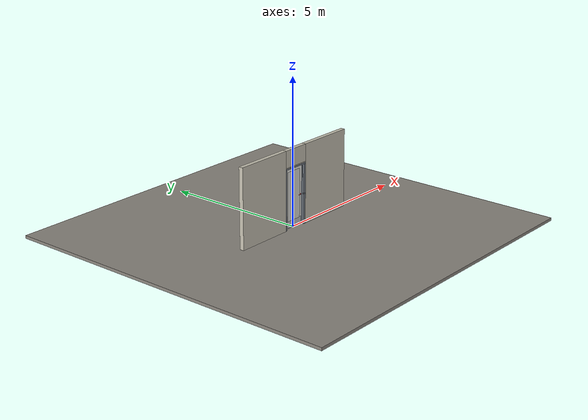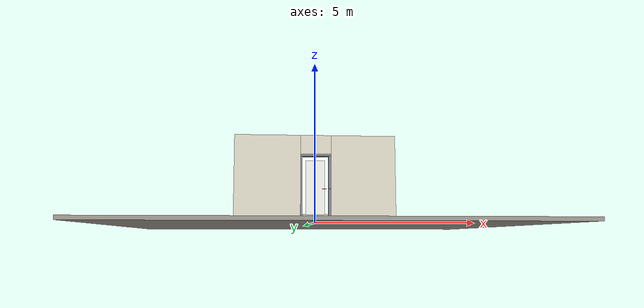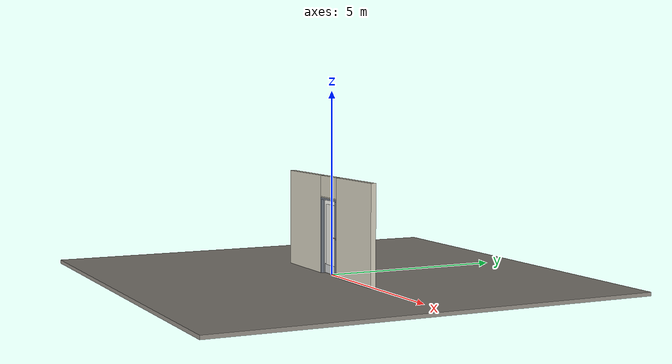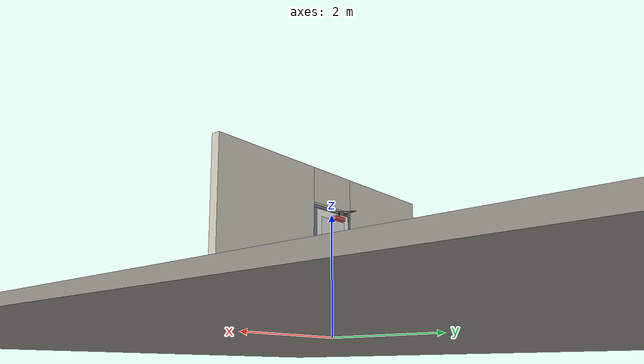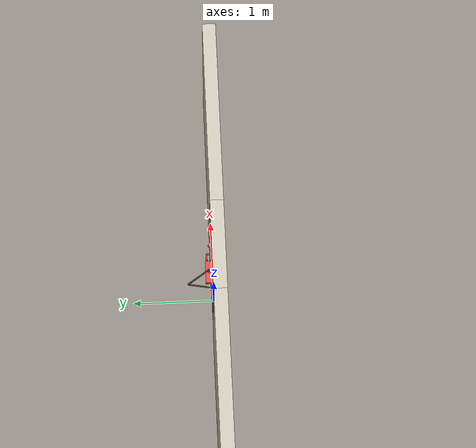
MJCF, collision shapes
<?xml version="1.0" ?>
<mujoco model="db0923_swing_single_full">
  <compiler angle="radian" meshdir="../../hardware" texturedir="../../textures" autolimits="true" inertiafromgeom="false"/>
  <option timestep="0.002" integrator="implicitfast" cone="elliptic" impratio="10" noslip_iterations="3">
    <flag multiccd="enable"/>
  </option>
  <size memory="16M"/>
  <default>
    <geom condim="4" solref="0.005 1" solimp="0.95 0.99 0.001"/>
    <joint solreflimit="0.005 1" solimplimit="0.95 0.99 0.001"/>
    <tendon solreflimit="0.005 1"/>
    <equality solref="0.002 1"/>
  </default>
  <visual>
    <headlight ambient="0.4 0.4 0.4" diffuse="0.7 0.7 0.7" specular="0.2 0.2 0.2"/>
    <quality shadowsize="4096"/>
    <map znear="0.01" zfar="60"/>
  </visual>
  <asset>
    <mesh name="closer_body_b226fdb10b" file="closer_body_b226fdb10b.obj"/>
    <mesh name="hinge_e22b26c0c1" file="hinge_e22b26c0c1.obj"/>
    <mesh name="hinge_jamb_e1d088f8dc" file="hinge_jamb_e1d088f8dc.obj"/>
    <mesh name="lever_9f02b544cf" file="lever_9f02b544cf.obj"/>
    <material name="mat_floor" rgba="0.55 0.53 0.5 1" specular="0.2" shininess="0.15" reflectance="0"/>
    <material name="mat_wall" rgba="0.78 0.76 0.7 1" specular="0.2" shininess="0.1" reflectance="0"/>
    <material name="mat_leaf" rgba="0.93 0.93 0.91 1" specular="0.2" shininess="0.59" reflectance="0"/>
    <material name="mat_leaf_panel" rgba="0.856 0.856 0.837 1" specular="0.2" shininess="0.59" reflectance="0"/>
    <material name="mat_hinge" rgba="0.65 0.66 0.68 1" specular="0.74" shininess="0.5" reflectance="0.36"/>
    <material name="mat_op_nickel_satin" rgba="0.72 0.7 0.66 1" specular="0.8" shininess="0.65" reflectance="0.4"/>
    <material name="mat_trim" rgba="0.85 0.66 0.3 1" specular="0.8" shininess="0.75" reflectance="0.4"/>
    <material name="mat_bolt" rgba="0.75 0.76 0.77 1" specular="0.8" shininess="0.65" reflectance="0.4"/>
    <material name="mat_frame" rgba="0.45 0.48 0.52 1" specular="0.32" shininess="0.6" reflectance="0.08"/>
    <material name="mat_seal" rgba="0.1 0.1 0.1 1" specular="0.2" shininess="0.1" reflectance="0"/>
    <material name="mat_closer" rgba="0.22 0.17 0.13 1" specular="0.8" shininess="0.6" reflectance="0.4"/>
    <material name="mat_kick" rgba="0.75 0.76 0.77 1" specular="0.8" shininess="0.65" reflectance="0.4"/>
    <texture name="skybox" type="skybox" builtin="gradient" rgb1="0.6 0.7 0.85" rgb2="0.9 0.92 0.95" width="256" height="256"/>
  </asset>
  <worldbody>
    <light name="sun" pos="1.5 -2.5 4" dir="-0.3 0.5 -0.8" directional="true" diffuse="0.8 0.8 0.8" specular="0.3 0.3 0.3" castshadow="true"/>
    <light name="fill" pos="-1.5 2.5 3" dir="0.3 -0.5 -0.7" directional="true" diffuse="0.35 0.35 0.4" castshadow="false"/>
    <camera name="robot_view" pos="0 -2.585687 1.734312" xyaxes="1 0 0 0 0.26963 0.962964" fovy="52"/>
    <camera name="far_view" pos="0 2.498687 1.734312" xyaxes="-1 0 0 0 -0.26963 0.962964" fovy="52"/>
    <camera name="iso" pos="1.932062 -2.178937 2.141063" xyaxes="0.741536 0.670913 0 -0.242917 0.268487 0.932151" fovy="46"/>
    <camera name="detail_handle" pos="0.4155 -0.877 1.32" xyaxes="0.97561 0.219512 0 -0.070934 0.315262 0.94635" fovy="38"/>
    <geom name="floor" type="box" size="6 6 0.05" pos="0 0 -0.05" material="mat_floor" group="0" contype="1" conaffinity="1" friction="0.8 0.005 0.0001" density="2400"/>
    <geom name="wall_left" type="box" size="1.01975 0.0725 1.35" pos="-1.48025 -0.0435 1.35" material="mat_wall" group="0" contype="1" conaffinity="1" friction="0.6 0.005 0.0001" density="800"/>
    <geom name="wall_right" type="box" size="1.00475 0.0725 1.35" pos="1.49525 -0.0435 1.35" material="mat_wall" group="0" contype="1" conaffinity="1" friction="0.6 0.005 0.0001" density="800"/>
    <geom name="wall_header" type="box" size="0.4755 0.0725 0.2875" pos="0.015 -0.0435 2.4125" material="mat_wall" group="0" contype="1" conaffinity="1" friction="0.6 0.005 0.0001" density="800"/>
    <geom name="hinge_0_jamb" type="mesh" mesh="hinge_jamb_e1d088f8dc" pos="-0.4075 0.029 0.259" quat="0 1 0 0" material="mat_hinge" group="1" contype="0" conaffinity="0" density="7850"/>
    <geom name="hinge_1_jamb" type="mesh" mesh="hinge_jamb_e1d088f8dc" pos="-0.4075 0.029 0.793" quat="0 1 0 0" material="mat_hinge" group="1" contype="0" conaffinity="0" density="7850"/>
    <geom name="hinge_2_jamb" type="mesh" mesh="hinge_jamb_e1d088f8dc" pos="-0.4075 0.029 1.327" quat="0 1 0 0" material="mat_hinge" group="1" contype="0" conaffinity="0" density="7850"/>
    <geom name="hinge_3_jamb" type="mesh" mesh="hinge_jamb_e1d088f8dc" pos="-0.4075 0.029 1.861" quat="0 1 0 0" material="mat_hinge" group="1" contype="0" conaffinity="0" density="7850"/>
    <geom name="jamb_hinge" type="box" size="0.025 0.0725 1.0225" pos="-0.4355 -0.0435 1.0225" material="mat_frame" group="0" contype="1" conaffinity="1" friction="0.6 0.005 0.0001" density="300"/>
    <geom name="strike_1040_wall_n" type="box" size="0.04 0.05325 0.018" pos="0.4505 -0.06275 1.04" material="mat_frame" group="0" contype="1" conaffinity="1" friction="0.6 0.005 0.0001" density="300"/>
    <geom name="strike_1040_wall_p" type="box" size="0.04 0.008 0.018" pos="0.4505 0.0175 1.04" material="mat_frame" group="0" contype="1" conaffinity="1" friction="0.6 0.005 0.0001" density="300"/>
    <geom name="strike_1040_ramp" type="box" size="0.04 0.018028 0.018" pos="0.453782 0.018312 1.04" quat="0.957092 0 0 -0.289784" material="mat_frame" group="0" contype="1" conaffinity="1" friction="0.12 0.005 0.0001" density="300"/>
    <geom name="strike_1040_back" type="box" size="0.0285 0.0095 0.018" pos="0.462 0 1.04" material="mat_frame" group="0" contype="1" conaffinity="1" friction="0.6 0.005 0.0001" density="300"/>
    <geom name="jamb_strike_0" type="box" size="0.04 0.0725 0.511" pos="0.4505 -0.0435 0.511" material="mat_frame" group="0" contype="1" conaffinity="1" friction="0.6 0.005 0.0001" density="300"/>
    <geom name="jamb_strike_1" type="box" size="0.04 0.0725 0.4935" pos="0.4505 -0.0435 1.5515" material="mat_frame" group="0" contype="1" conaffinity="1" friction="0.6 0.005 0.0001" density="300"/>
    <geom name="jamb_head" type="box" size="0.4755 0.0725 0.025" pos="0.015 -0.0435 2.07" material="mat_frame" group="0" contype="1" conaffinity="1" friction="0.6 0.005 0.0001" density="300"/>
    <geom name="head_stud" type="box" size="0.4755 0.0725 0.015" pos="0.015 -0.0435 2.11" material="mat_wall" group="0" contype="1" conaffinity="1" friction="0.6 0.005 0.0001" density="500"/>
    <geom name="stop_hinge" type="box" size="0.0055 0.016 1.0225" pos="-0.405 -0.0385 1.0225" material="mat_frame" group="0" contype="1" conaffinity="1" friction="0.6 0.005 0.0001" density="300"/>
    <geom name="stop_strike" type="box" size="0.0055 0.016 1.0225" pos="0.405 -0.0385 1.0225" material="mat_frame" group="0" contype="1" conaffinity="1" friction="0.6 0.005 0.0001" density="300"/>
    <geom name="stop_head" type="box" size="0.4105 0.016 0.0055" pos="0 -0.0385 2.0395" material="mat_frame" group="0" contype="1" conaffinity="1" friction="0.6 0.005 0.0001" density="300"/>
    <geom name="seal_hinge" type="box" size="0.004 0.002 1.0225" pos="-0.4075 -0.024 1.0225" material="mat_seal" group="1" contype="0" conaffinity="0" density="1100"/>
    <geom name="seal_strike" type="box" size="0.004 0.002 1.0225" pos="0.4075 -0.024 1.0225" material="mat_seal" group="1" contype="0" conaffinity="0" density="1100"/>
    <geom name="seal_head" type="box" size="0.3905 0.002 0.008" pos="0 -0.024 2.033" material="mat_seal" group="1" contype="0" conaffinity="0" density="1100"/>
    <geom name="closer_bracket" type="box" size="0.03 0.012 0.014" pos="-0.3105 0.041 2.075" material="mat_closer" group="1" contype="0" conaffinity="0" density="2700"/>
    <site name="approach_point" pos="0 -1.5 0" quat="1 0 0 0" size="0.05" rgba="0.2 0.9 0.2 0.5" group="4"/>
    <site name="goal_point" pos="0 1.5 0" quat="1 0 0 0" size="0.05" rgba="0.2 0.9 0.2 0.5" group="4"/>
    <site name="door_plane_center" pos="0 0 1.0225" quat="1 0 0 0" size="0.02" rgba="0.2 0.9 0.2 0.5" group="4"/>
    <body name="leaf" pos="-0.4105 0 0">
      <inertial pos="0.388064 0.007828 1.116594" mass="54.025997" quat="-0.483943 0.499576 0.509525 0.506565" diaginertia="2.75857933 22.953840493 25.654293739"/>
      <joint name="leaf_hinge" type="hinge" axis="0 0 1" pos="0.003 0.029 0" limited="true" range="0 1.570796" solreflimit="0.02 1" damping="10.160326" frictionloss="1.119076" stiffness="12.827888" springref="-1.543512" armature="0.02"/>
      <geom name="leaf_slab" type="box" size="0.4065 0.022 1.016" pos="0.4095 0 1.025" material="mat_leaf" group="0" contype="1" conaffinity="1" friction="0.4 0.005 0.0001" density="1"/>
      <geom name="leaf_panel_0_n" type="box" size="0.2965 0.003 0.83344" pos="0.4095 -0.025 1.08596" material="mat_leaf_panel" group="1" contype="0" conaffinity="0" density="1"/>
      <geom name="leaf_panel_0_p" type="box" size="0.2965 0.003 0.83344" pos="0.4095 0.025 1.08596" material="mat_leaf_panel" group="1" contype="0" conaffinity="0" density="1"/>
      <geom name="hinge_0" type="mesh" mesh="hinge_e22b26c0c1" pos="0.003 0.029 0.259" quat="0 1 0 0" material="mat_hinge" group="1" contype="0" conaffinity="0" density="7850"/>
      <geom name="hinge_1" type="mesh" mesh="hinge_e22b26c0c1" pos="0.003 0.029 0.793" quat="0 1 0 0" material="mat_hinge" group="1" contype="0" conaffinity="0" density="7850"/>
      <geom name="hinge_2" type="mesh" mesh="hinge_e22b26c0c1" pos="0.003 0.029 1.327" quat="0 1 0 0" material="mat_hinge" group="1" contype="0" conaffinity="0" density="7850"/>
      <geom name="hinge_3" type="mesh" mesh="hinge_e22b26c0c1" pos="0.003 0.029 1.861" quat="0 1 0 0" material="mat_hinge" group="1" contype="0" conaffinity="0" density="7850"/>
      <geom name="leaf_latch_bolt_faceplate" type="box" size="0.0006 0.014 0.028" pos="0.8154 0 1.04" material="mat_bolt" group="1" contype="0" conaffinity="0" density="8500"/>
      <geom name="closer_body" type="mesh" mesh="closer_body_b226fdb10b" pos="0.3 0.022 1.952" quat="-0.707107 0.707107 0 0" material="mat_closer" group="1" contype="0" conaffinity="0" density="2000"/>
      <geom name="closer_body_col" type="box" size="0.12 0.04 0.03" pos="0.3 0.062 1.952" material="mat_closer" group="3" contype="1" conaffinity="1" rgba="0.8 0.3 0.3 0.25" friction="0.6 0.005 0.0001" density="2000"/>
      <geom name="closer_pinion_shaft" type="cylinder" size="0.008 0.0615" pos="0.3 0.064 2.0135" material="mat_closer" group="1" contype="0" conaffinity="0" density="2700"/>
      <geom name="kick_plate_n" type="box" size="0.3765 0.0008 0.125" pos="0.4095 -0.0228 0.144" material="mat_kick" group="2" contype="0" conaffinity="0" density="7900"/>
      <site name="leaf_edge_mid" pos="0.816 0 1.016" quat="1 0 0 0" size="0.02" rgba="0.2 0.9 0.2 0.5" group="4"/>
      <body name="leaf_handle" pos="0.746 0 1.04">
        <inertial pos="-0.028544 0 0" mass="0.978187" quat="0 0.707107 0.707107 0" diaginertia="0.001772047 0.003604455 0.005198299"/>
        <joint name="leaf_handle_hinge" type="hinge" axis="0 -1 0" limited="true" range="0 0.96" damping="0.245624" frictionloss="0.048" stiffness="1.2" springref="-0.458333" armature="0.01"/>
        <geom name="leaf_handle_spindle" type="cylinder" size="0.006 0.03" pos="0 0 0" quat="0.707107 -0.707107 0 0" material="mat_op_nickel_satin" group="1" contype="0" conaffinity="0" density="7850"/>
        <geom name="leaf_handle_lever_n" type="mesh" mesh="lever_9f02b544cf" pos="0 -0.022 0" quat="0.707107 0.707107 0 0" material="mat_op_nickel_satin" group="1" contype="0" conaffinity="0" density="3000"/>
        <geom name="leaf_handle_lever_col_n" type="capsule" size="0.0095 0.053" pos="-0.0625 -0.077 0" quat="0.707107 0 -0.707107 0" material="mat_op_nickel_satin" group="3" contype="1" conaffinity="1" rgba="0.8 0.3 0.3 0.25" friction="0.7 0.01 0.0001" density="3000"/>
        <geom name="leaf_handle_hub_col_n" type="cylinder" size="0.012 0.022" pos="0 -0.052 0" quat="0.707107 -0.707107 0 0" material="mat_op_nickel_satin" group="3" contype="1" conaffinity="1" rgba="0.8 0.3 0.3 0.25" friction="0.6 0.005 0.0001" density="3000"/>
        <geom name="leaf_handle_lever_p" type="mesh" mesh="lever_9f02b544cf" pos="0 0.022 0" quat="-0.707107 0.707107 0 0" material="mat_op_nickel_satin" group="1" contype="0" conaffinity="0" density="3000"/>
        <geom name="leaf_handle_lever_col_p" type="capsule" size="0.0095 0.053" pos="-0.0625 0.077 0" quat="0.707107 0 -0.707107 0" material="mat_op_nickel_satin" group="3" contype="1" conaffinity="1" rgba="0.8 0.3 0.3 0.25" friction="0.7 0.01 0.0001" density="3000"/>
        <geom name="leaf_handle_hub_col_p" type="cylinder" size="0.012 0.022" pos="0 0.052 0" quat="0.707107 -0.707107 0 0" material="mat_op_nickel_satin" group="3" contype="1" conaffinity="1" rgba="0.8 0.3 0.3 0.25" friction="0.6 0.005 0.0001" density="3000"/>
        <site name="leaf_handle_grip_n" pos="-0.1 -0.077 0" quat="1 0 0 0" size="0.012" rgba="0.2 0.9 0.2 0.5" group="4"/>
        <site name="leaf_handle_grip_p" pos="-0.1 0.077 0" quat="1 0 0 0" size="0.012" rgba="0.2 0.9 0.2 0.5" group="4"/>
      </body>
      <body name="leaf_latch_bolt" pos="0.816 0 1.04">
        <inertial pos="-0.0055 0 0" mass="0.074627" quat="0.92388 -0.382683 0 0" diaginertia="0.000002271 0.000013255 0.000013255"/>
        <joint name="leaf_latch_bolt_slide" type="slide" axis="-1 0 0" limited="true" range="0 0.019" damping="2" frictionloss="0.3" stiffness="550" springref="-0.01" armature="0.1"/>
        <geom name="leaf_latch_bolt_capsule" type="capsule" size="0.008 0.0165" pos="-0.0055 0 0" quat="0.707107 0 0.707107 0" material="mat_bolt" group="0" contype="1" conaffinity="1" friction="0.2 0.005 0.0001" density="8500"/>
      </body>
      <body name="closer_arm_main" pos="0.3 0.064 2.075" quat="0.472212 0 0 0.881485">
        <inertial pos="0.14 0 0" mass="0.12096" quat="1 0 0 0" diaginertia="0.000003588 0.00079128 0.000792852"/>
        <joint name="closer_pinion" type="hinge" axis="0 0 1" limited="false" damping="0.01" armature="0.002"/>
        <geom name="closer_arm_main_geom" type="box" size="0.14 0.008 0.005" pos="0.14 0 0" material="mat_closer" group="1" contype="0" conaffinity="0" density="2700"/>
        <body name="closer_arm_fore" pos="0.28 0 0" quat="-0.371222 0 0 -0.928544">
          <inertial pos="0.128088 0 0" mass="0.076531" quat="1 0 0 0" diaginertia="0.000001771 0.000437665 0.000438201"/>
          <joint name="closer_elbow" type="hinge" axis="0 0 1" limited="false" damping="0.01" armature="0.002"/>
          <geom name="closer_arm_fore_geom" type="box" size="0.1125 0.007 0.004" pos="0.1125 0 0" material="mat_closer" group="1" contype="0" conaffinity="0" density="2700"/>
          <geom name="closer_fore_neck" type="box" size="0.0175 0.003 0.003" pos="0.2425 0 0" material="mat_closer" group="1" contype="0" conaffinity="0" density="2700"/>
          <geom name="closer_fore_pivot" type="cylinder" size="0.005 0.012" pos="0.26 0 0" material="mat_closer" group="1" contype="0" conaffinity="0" density="2700"/>
        </body>
      </body>
    </body>
  </worldbody>
  <tendon>
    <fixed name="leaf_latch_bolt_coupling" limited="true" range="0 10">
      <joint joint="leaf_latch_bolt_slide" coef="1"/>
      <joint joint="leaf_handle_hinge" coef="-0.020879"/>
    </fixed>
  </tendon>
  <equality>
    <connect name="closer_arm_connect" body1="closer_arm_fore" body2="world" anchor="0.26 0 0" active="true"/>
  </equality>
  <contact>
    <exclude body1="closer_arm_main" body2="leaf"/>
    <exclude body1="closer_arm_fore" body2="leaf"/>
    <exclude body1="closer_arm_main" body2="closer_arm_fore"/>
  </contact>
  <sensor>
    <jointpos name="leaf_hinge_pos" joint="leaf_hinge"/>
    <jointvel name="leaf_hinge_vel" joint="leaf_hinge"/>
    <jointpos name="leaf_handle_hinge_pos" joint="leaf_handle_hinge"/>
    <jointvel name="leaf_handle_hinge_vel" joint="leaf_handle_hinge"/>
    <jointpos name="leaf_latch_bolt_slide_pos" joint="leaf_latch_bolt_slide"/>
    <jointvel name="leaf_latch_bolt_slide_vel" joint="leaf_latch_bolt_slide"/>
  </sensor>
</mujoco>
